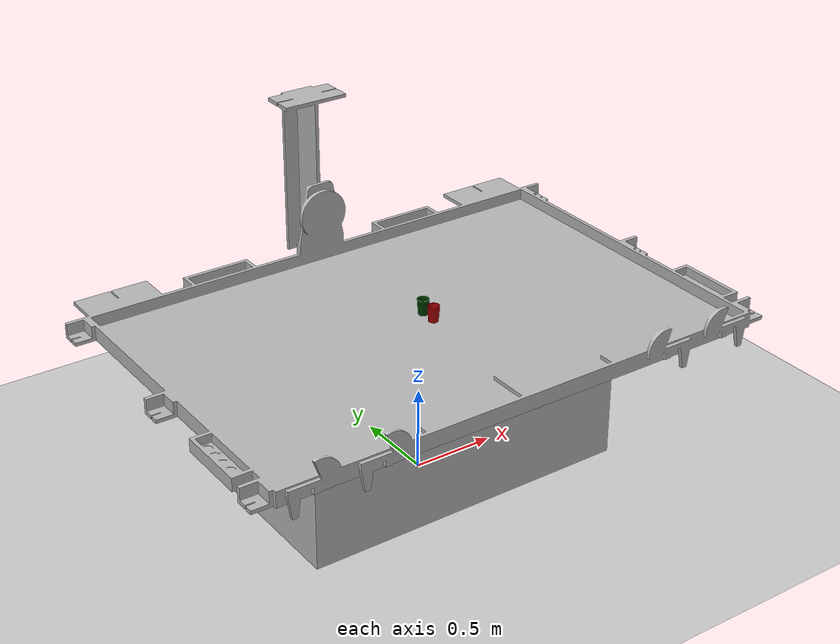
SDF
<?xml version="1.0"?>
<sdf version="1.4">
  <world name="eurobot">
    <include>
      <uri>model://ground_plane</uri>
    </include>
    <include>
      <uri>model://sun</uri>
    </include>

     <include>
      <uri>model://table_eurobot_2020</uri>
    </include>

    <include>
      <pose>0.1 0.1 0.9 0 0 0</pose>
      <uri>model://balise_green</uri>
    </include>

    <include>
    <pose>0.1 0 0.9 0 0 0</pose>
      <uri>model://balise_red</uri>
    </include>

  </world>
</sdf>

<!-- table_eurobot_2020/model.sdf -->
<sdf version="1.4">
  <model name="table_eurobot_2020">
    <pose>0 0 0 0 0 0</pose>
    <static>true</static>

    <link name="table">
              <inertial>
                <mass>15</mass>
                <inertia> <!-- inertias are tricky to compute -->
                  <!-- http://gazebosim.org/tutorials?tut=inertia&cat=build_robot -->
                  <ixx>0.083</ixx>       <!-- for a box: ixx = 0.083 * mass * (y*y + z*z) -->
                  <ixy>0.0</ixy>         <!-- for a box: ixy = 0 -->
                  <ixz>0.0</ixz>         <!-- for a box: ixz = 0 -->
                  <iyy>0.083</iyy>       <!-- for a box: iyy = 0.083 * mass * (x*x + z*z) -->
                  <iyz>0.0</iyz>         <!-- for a box: iyz = 0 -->
                  <izz>0.083</izz>       <!-- for a box: izz = 0.083 * mass * (x*x + y*y) -->
                </inertia>
              </inertial>

              <collision name="table_collision">
                <pose>0 0 0.9 0 0 0</pose>
                <geometry>
                   <mesh>
                        <uri>model://table_eurobot_2020/meshes/table.dae</uri>
                        <scale>1 1 1 </scale>
                   </mesh>
                </geometry>
              </collision>

              <visual name="table_visual">
               <pose>-1.5 1 0.9 1.57 0 0</pose>
                <geometry>
                  <mesh>
                        <uri>model://table_eurobot_2020/meshes/table_tex2.dae</uri>
                        <scale>1 1 1 </scale>
                   </mesh>
                </geometry>
              </visual>

      <collision name="table_stand_collision">
      <pose>0 0 0.45 0 0 0</pose>
        <geometry>
          <box> <size>2 1 0.9</size>   </box>
        </geometry>
      </collision>

      <visual name="table_stand_visual">
      <pose>0 0 0.45 0 0 0</pose>
         <geometry>
          <box> <size>2 1 0.9</size>   </box>
        </geometry>
      </visual>

    </link>

  </model>
</sdf>

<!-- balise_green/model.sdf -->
<sdf version="1.4">
  <model name="balise_green">
    <pose>0 0 0 0 0 0</pose>
    <static>true</static>

    <link name="balise">
              <inertial>
                <mass>0.1</mass>
                <inertia> <!-- inertias are tricky to compute -->
                  <!-- http://gazebosim.org/tutorials?tut=inertia&cat=build_robot -->
                  <ixx>0.083</ixx>       <!-- for a box: ixx = 0.083 * mass * (y*y + z*z) -->
                  <ixy>0.0</ixy>         <!-- for a box: ixy = 0 -->
                  <ixz>0.0</ixz>         <!-- for a box: ixz = 0 -->
                  <iyy>0.083</iyy>       <!-- for a box: iyy = 0.083 * mass * (x*x + z*z) -->
                  <iyz>0.0</iyz>         <!-- for a box: iyz = 0 -->
                  <izz>0.083</izz>       <!-- for a box: izz = 0.083 * mass * (x*x + y*y) -->
                </inertia>
              </inertial>

              <collision name="balise_collision">
                <pose>0 0 0.06 0 0 0</pose>
                <geometry>
                   <mesh>
                        <uri>model://balise_green/meshes/balise_green.dae</uri>
                        <scale>1 1 1 </scale>
                   </mesh>
                </geometry>
              </collision>

              <visual name="balise_visual">
               <pose>0 0 0.06 0 0 0</pose>
                <geometry>
                  <mesh>
                        <uri>model://balise_green/meshes/balise_green.dae</uri>
                        <scale>1 1 1 </scale>
                   </mesh>
                </geometry>
              </visual>

    </link>

  </model>
</sdf>

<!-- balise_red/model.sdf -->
<sdf version="1.4">
  <model name="balise_red">
    <pose>0 0 0 0 0 0</pose>
    <static>true</static>

    <link name="balise">
              <inertial>
                <mass>0.1</mass>
                <inertia> <!-- inertias are tricky to compute -->
                  <!-- http://gazebosim.org/tutorials?tut=inertia&cat=build_robot -->
                  <ixx>0.083</ixx>       <!-- for a box: ixx = 0.083 * mass * (y*y + z*z) -->
                  <ixy>0.0</ixy>         <!-- for a box: ixy = 0 -->
                  <ixz>0.0</ixz>         <!-- for a box: ixz = 0 -->
                  <iyy>0.083</iyy>       <!-- for a box: iyy = 0.083 * mass * (x*x + z*z) -->
                  <iyz>0.0</iyz>         <!-- for a box: iyz = 0 -->
                  <izz>0.083</izz>       <!-- for a box: izz = 0.083 * mass * (x*x + y*y) -->
                </inertia>
              </inertial>

              <collision name="balise_collision">
                <pose>0 0 0.06 0 0 0</pose>
                <geometry>
                   <mesh>
                        <uri>model://balise_red/meshes/balise_red.dae</uri>
                        <scale>1 1 1 </scale>
                   </mesh>
                </geometry>
              </collision>

              <visual name="balise_visual">
               <pose>0 0 0.06 0 0 0</pose>
                <geometry>
                  <mesh>
                        <uri>model://balise_red/meshes/balise_red.dae</uri>
                        <scale>1 1 1 </scale>
                   </mesh>
                </geometry>
              </visual>

    </link>

  </model>
</sdf>
